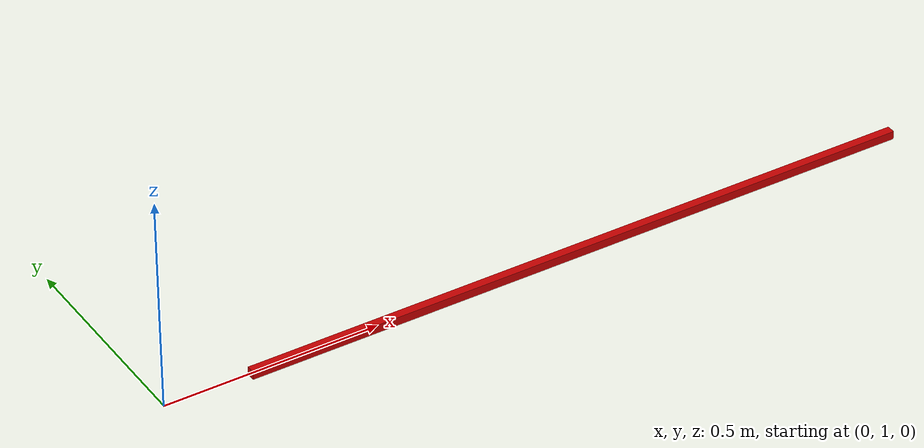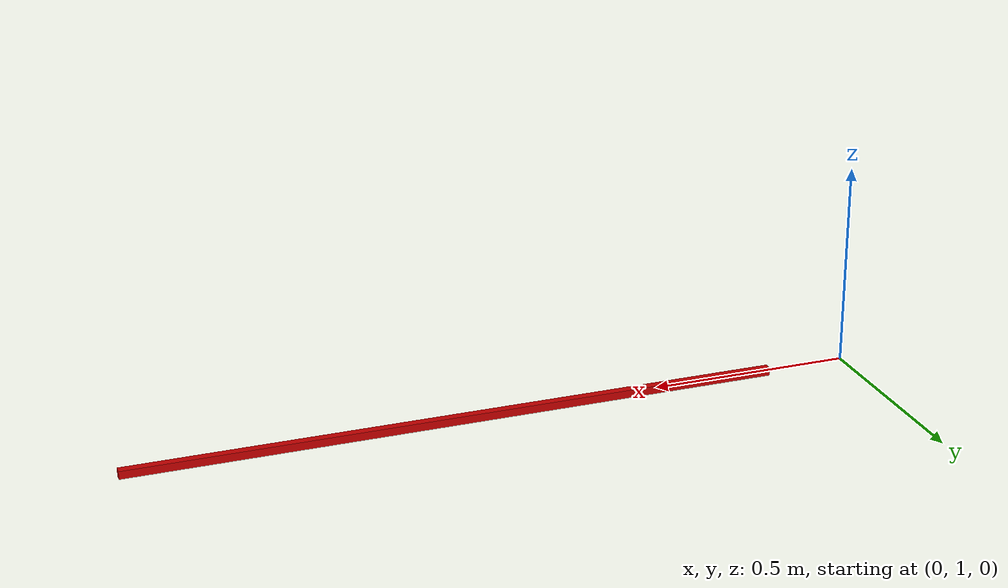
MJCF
<!--
 MuJoCo MJCF test file. See http://mujoco.org/book/index.html
  -->
<mujoco>
   <worldbody>
      <body name="wall" pos="1.0 1.0 0.0">
         <inertial mass="0"/>
         <geom contype="1" friction="0.5 0.5 0.5" type="box" rgba="0.8 0.0 0.0 1" size="0.8 0.01 0.01"/>
        </body>
   </worldbody>
</mujoco>
